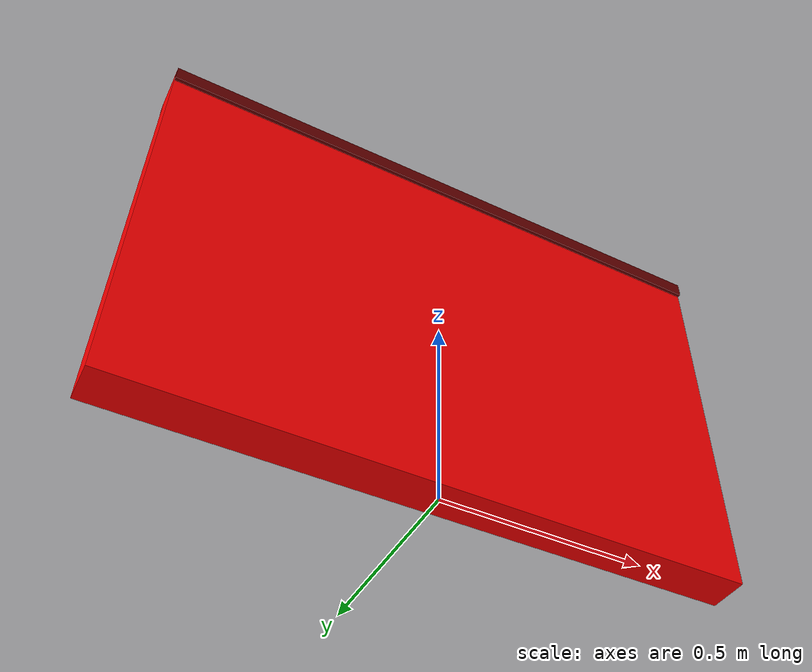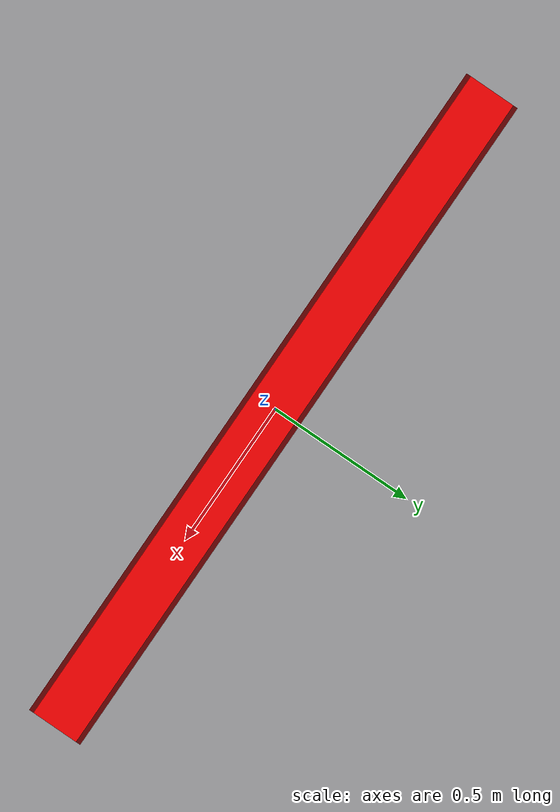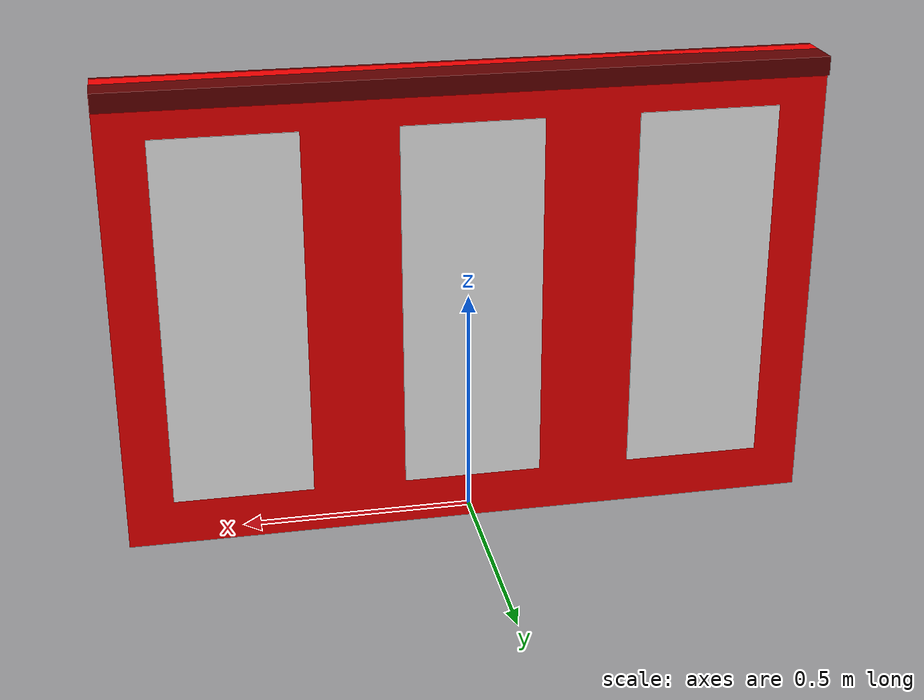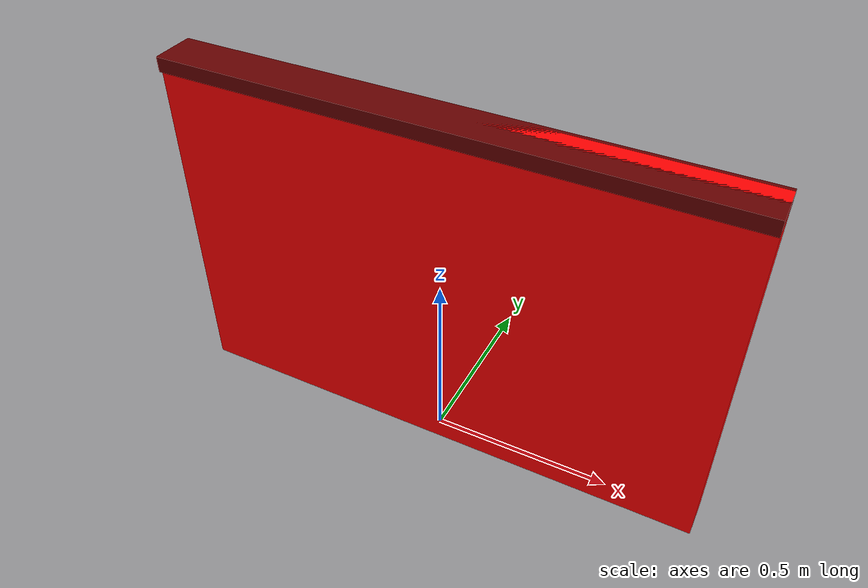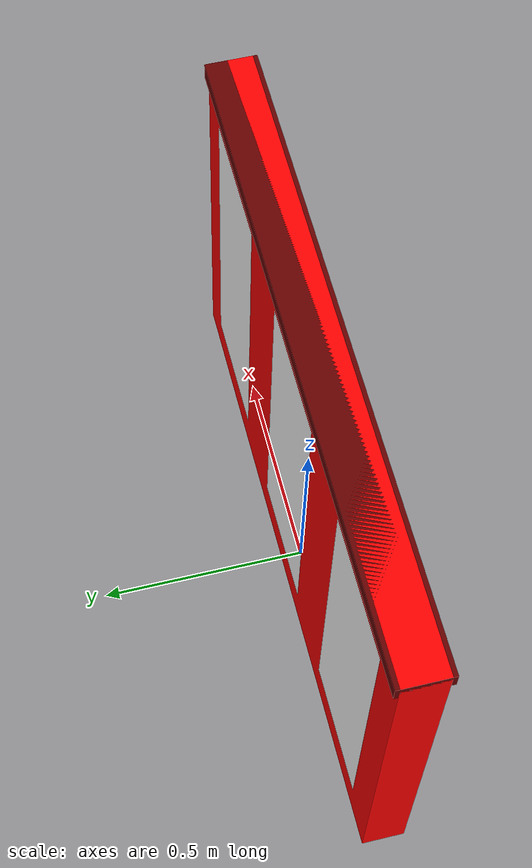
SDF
<?xml version="1.0" ?>
<!--
  FIRA Air - Red Gate Obstacle
  Drone must fly OVER this barrier
  Dimensions: 1.5m wide x 1m high x 10cm thick solid barrier
-->
<sdf version="1.9">
  <model name="gate_red">
    <static>true</static>
    <link name="link">

      <!-- Solid red barrier -->
      <visual name="barrier">
        <pose>0 0 0.5 0 0 0</pose>
        <geometry>
          <box>
            <size>1.5 0.1 1</size>
          </box>
        </geometry>
        <material>
          <ambient>0.8 0.0 0.0 1</ambient>
          <diffuse>1.0 0.0 0.0 1</diffuse>
          <specular>0.3 0.0 0.0 1</specular>
        </material>
      </visual>

      <collision name="collision">
        <pose>0 0 0.5 0 0 0</pose>
        <geometry>
          <box>
            <size>1.5 0.1 1</size>
          </box>
        </geometry>
      </collision>

      <!-- Warning stripes -->
      <visual name="stripe_1">
        <pose>-0.5 0.051 0.5 0 0 0</pose>
        <geometry>
          <box>
            <size>0.3 0.001 0.8</size>
          </box>
        </geometry>
        <material>
          <ambient>1.0 1.0 1.0 1</ambient>
          <diffuse>1.0 1.0 1.0 1</diffuse>
        </material>
      </visual>

      <visual name="stripe_2">
        <pose>0 0.051 0.5 0 0 0</pose>
        <geometry>
          <box>
            <size>0.3 0.001 0.8</size>
          </box>
        </geometry>
        <material>
          <ambient>1.0 1.0 1.0 1</ambient>
          <diffuse>1.0 1.0 1.0 1</diffuse>
        </material>
      </visual>

      <visual name="stripe_3">
        <pose>0.5 0.051 0.5 0 0 0</pose>
        <geometry>
          <box>
            <size>0.3 0.001 0.8</size>
          </box>
        </geometry>
        <material>
          <ambient>1.0 1.0 1.0 1</ambient>
          <diffuse>1.0 1.0 1.0 1</diffuse>
        </material>
      </visual>

      <!-- Top edge marker -->
      <visual name="top_edge">
        <pose>0 0 0.98 0 0 0</pose>
        <geometry>
          <box>
            <size>1.5 0.12 0.04</size>
          </box>
        </geometry>
        <material>
          <ambient>0.3 0.0 0.0 1</ambient>
          <diffuse>0.4 0.0 0.0 1</diffuse>
        </material>
      </visual>

    </link>
  </model>
</sdf>
